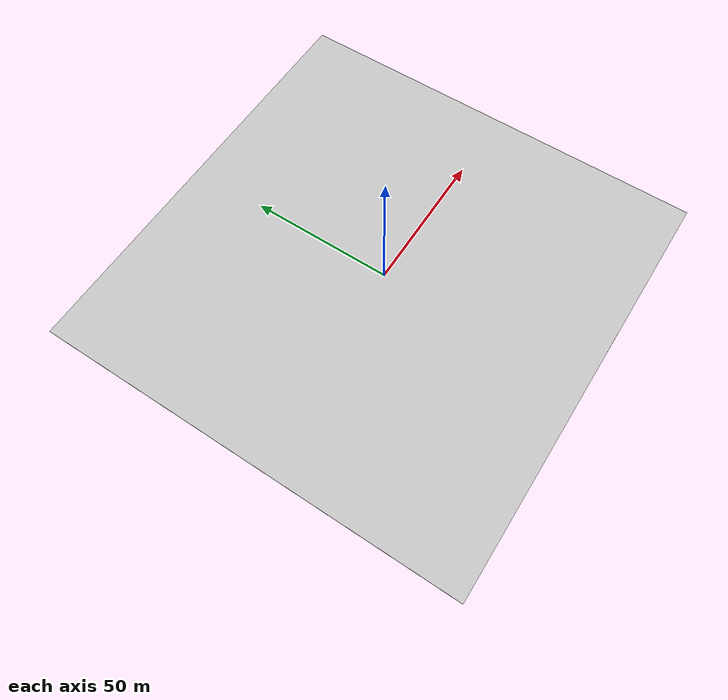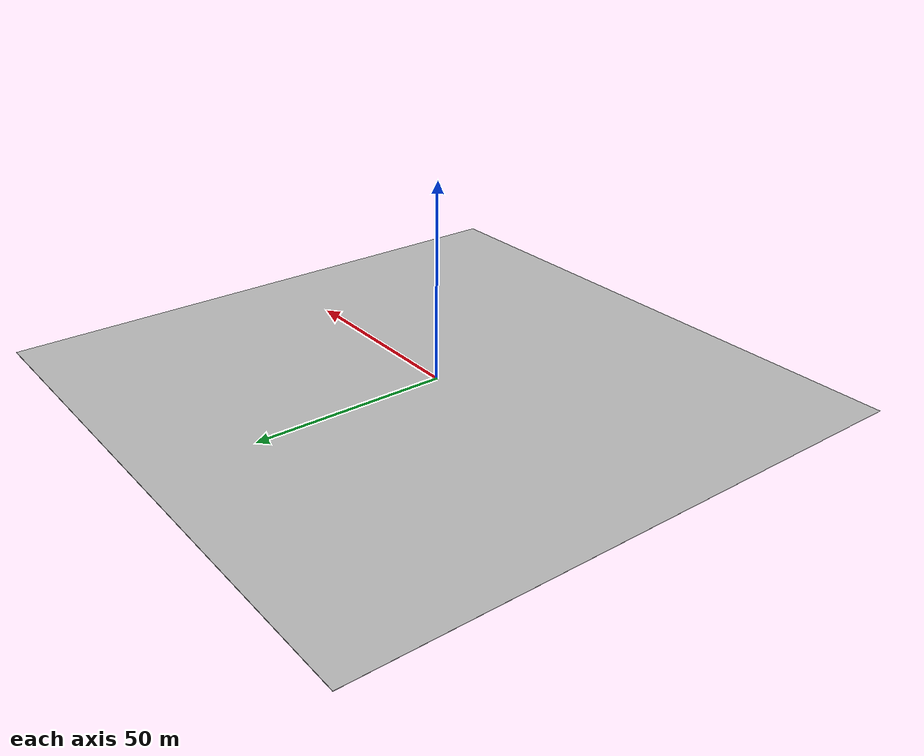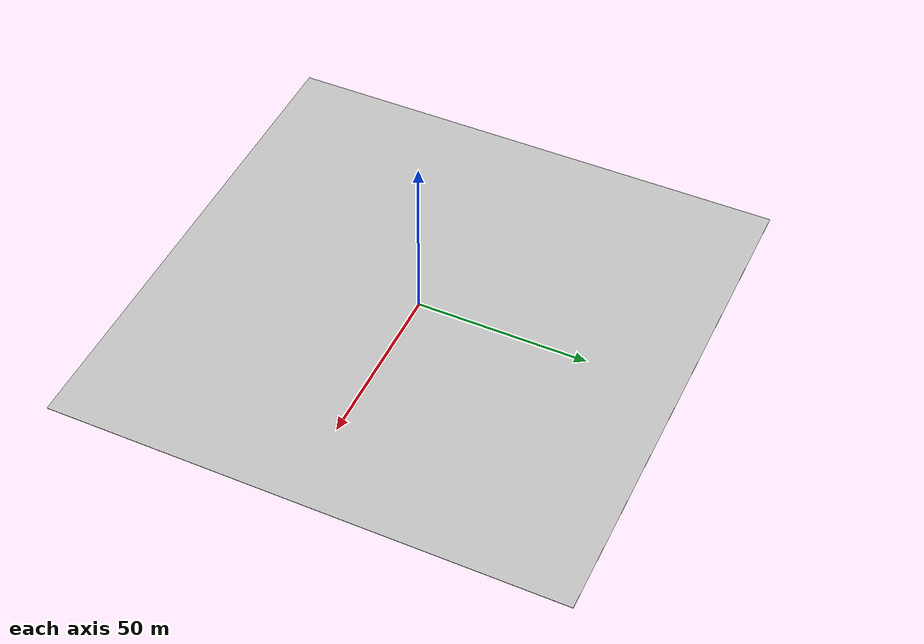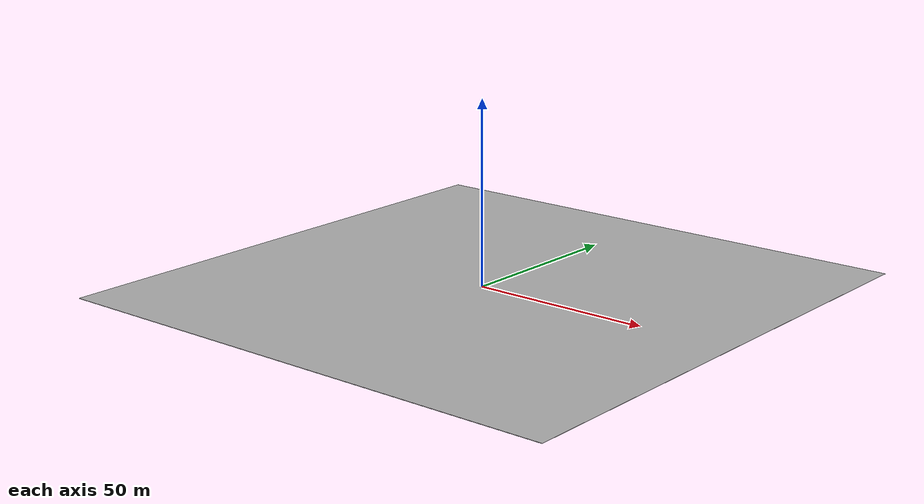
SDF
<?xml version="1.0"?>
<sdf version="1.4">
  <world name="default">

    <include>
      <uri>model://sun</uri>
    </include>

    <model name="ground">
      <pose>1 2.3 -.1 0 0 0</pose>
      <static>1</static>
      <link name="ground">
        <collision name="ground_coll">
          <geometry>
            <box>
              <size>150 150 .1</size>
            </box>
          </geometry>
        </collision>

        <visual name="ground_vis">
          <geometry>
            <box>
              <size>150 150 .1</size>
            </box>
          </geometry>

          <material>
            <script>
              <uri>file://course.material</uri>
              <name>course</name>
            </script>
          </material>
        </visual>
      </link>
    </model>

  </world>
</sdf>
